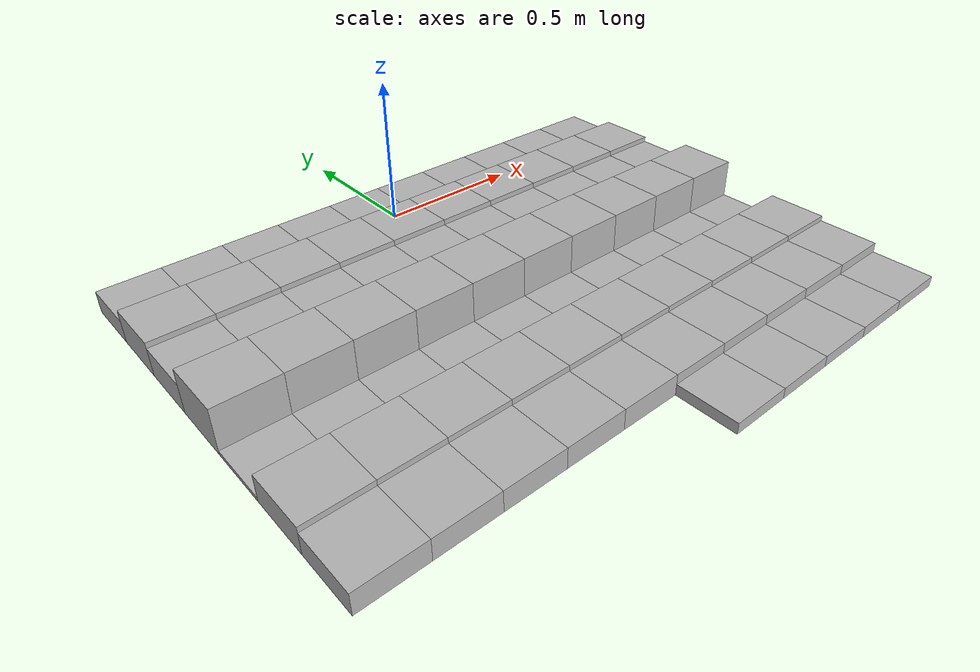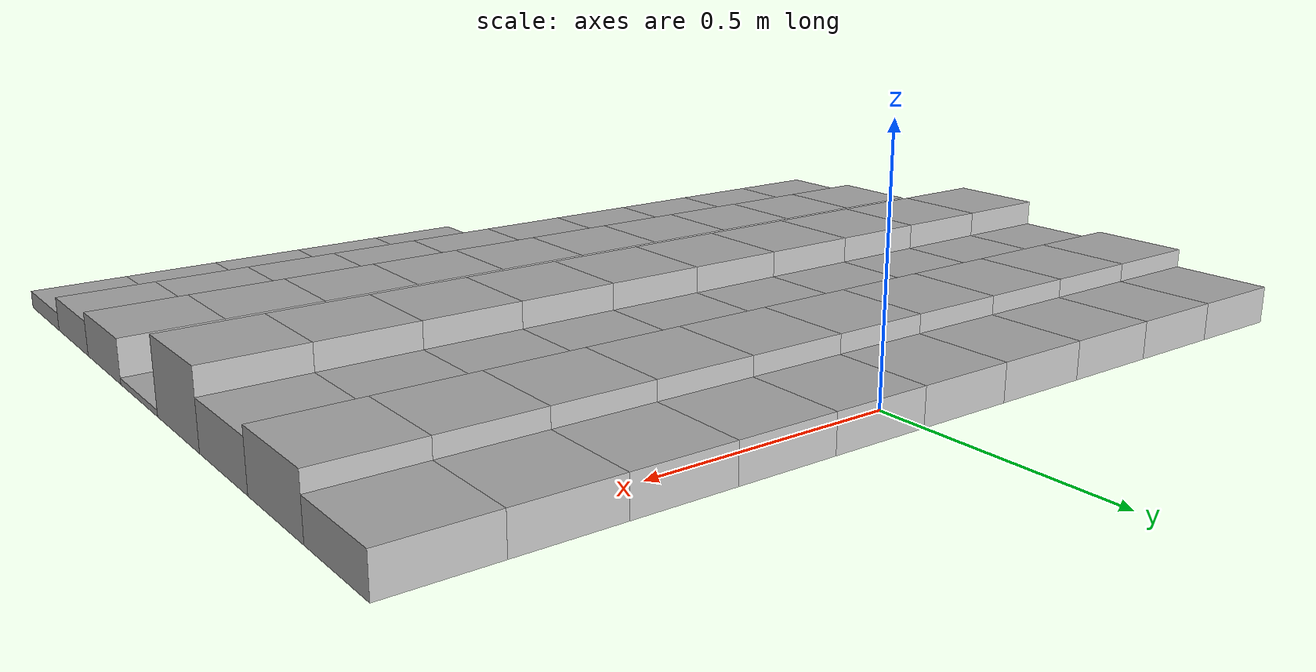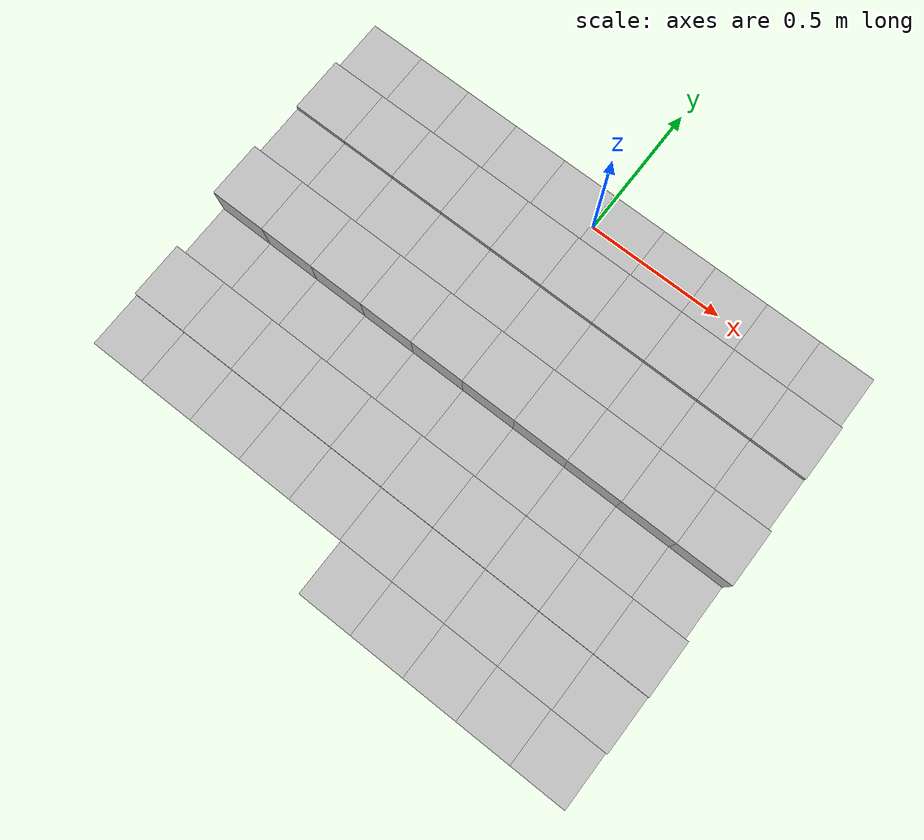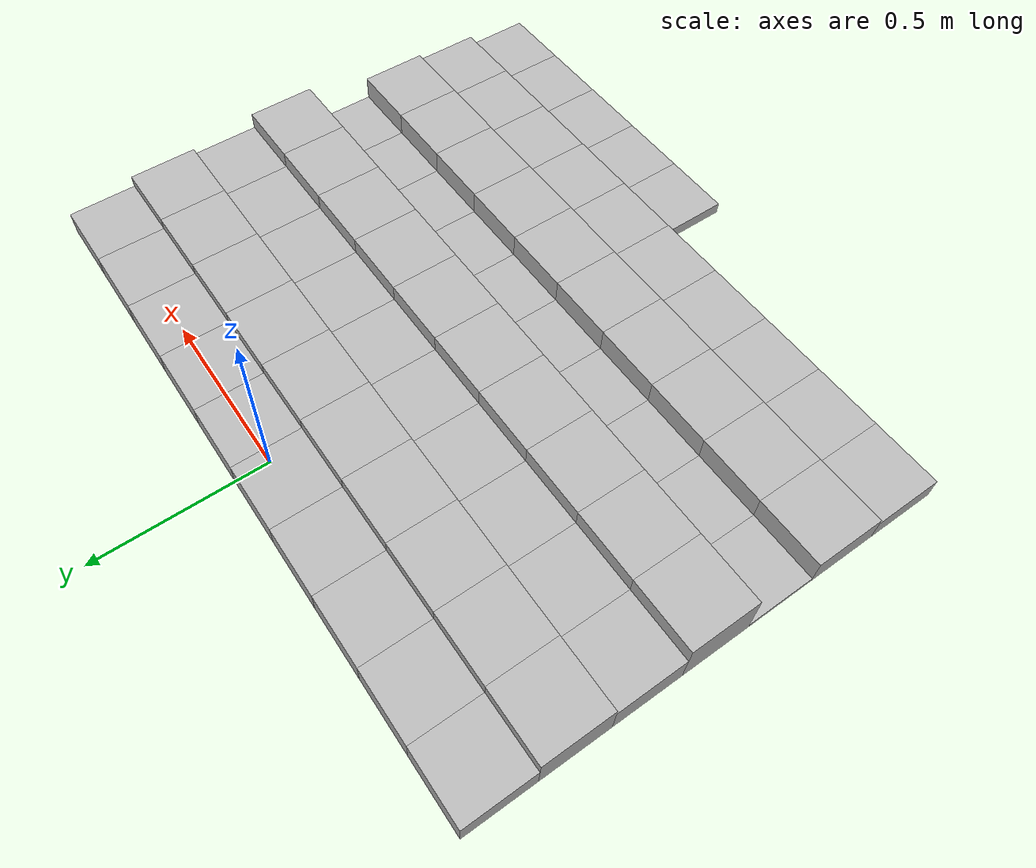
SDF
<sdf version="1.6">
 <model name="Terrain">
  <static>true</static>
  <link name="box_0_0">
   <pose>-0.9 0.0 0.0372517309815 0 0 0</pose>
   <inertial>
    <mass>1.0</mass>
    <inertia><ixx>0.0</ixx><ixy>0.0</ixy><ixz>0.0</ixz><iyy>0.0</iyy><iyz>0.0</iyz><izz>0.0</izz></inertia>
   </inertial>
   <collision name="collision"><geometry><box><size>0.2 0.2 0.0745034619631</size></box></geometry></collision>
   <visual name="visual"><geometry><box><size>0.2 0.2 0.0745034619631</size></box></geometry></visual>
  </link>
  <link name="box_0_1">
   <pose>-0.7 0.0 0.0372517309815 0 0 0</pose>
   <inertial>
    <mass>1.0</mass>
    <inertia><ixx>0.0</ixx><ixy>0.0</ixy><ixz>0.0</ixz><iyy>0.0</iyy><iyz>0.0</iyz><izz>0.0</izz></inertia>
   </inertial>
   <collision name="collision"><geometry><box><size>0.2 0.2 0.0745034619631</size></box></geometry></collision>
   <visual name="visual"><geometry><box><size>0.2 0.2 0.0745034619631</size></box></geometry></visual>
  </link>
  <link name="box_0_2">
   <pose>-0.5 0.0 0.0372517309815 0 0 0</pose>
   <inertial>
    <mass>1.0</mass>
    <inertia><ixx>0.0</ixx><ixy>0.0</ixy><ixz>0.0</ixz><iyy>0.0</iyy><iyz>0.0</iyz><izz>0.0</izz></inertia>
   </inertial>
   <collision name="collision"><geometry><box><size>0.2 0.2 0.0745034619631</size></box></geometry></collision>
   <visual name="visual"><geometry><box><size>0.2 0.2 0.0745034619631</size></box></geometry></visual>
  </link>
  <link name="box_0_3">
   <pose>-0.3 0.0 0.0372517309815 0 0 0</pose>
   <inertial>
    <mass>1.0</mass>
    <inertia><ixx>0.0</ixx><ixy>0.0</ixy><ixz>0.0</ixz><iyy>0.0</iyy><iyz>0.0</iyz><izz>0.0</izz></inertia>
   </inertial>
   <collision name="collision"><geometry><box><size>0.2 0.2 0.0745034619631</size></box></geometry></collision>
   <visual name="visual"><geometry><box><size>0.2 0.2 0.0745034619631</size></box></geometry></visual>
  </link>
  <link name="box_0_4">
   <pose>-0.1 0.0 0.0372517309815 0 0 0</pose>
   <inertial>
    <mass>1.0</mass>
    <inertia><ixx>0.0</ixx><ixy>0.0</ixy><ixz>0.0</ixz><iyy>0.0</iyy><iyz>0.0</iyz><izz>0.0</izz></inertia>
   </inertial>
   <collision name="collision"><geometry><box><size>0.2 0.2 0.0745034619631</size></box></geometry></collision>
   <visual name="visual"><geometry><box><size>0.2 0.2 0.0745034619631</size></box></geometry></visual>
  </link>
  <link name="box_0_5">
   <pose>0.1 0.0 0.0372517309815 0 0 0</pose>
   <inertial>
    <mass>1.0</mass>
    <inertia><ixx>0.0</ixx><ixy>0.0</ixy><ixz>0.0</ixz><iyy>0.0</iyy><iyz>0.0</iyz><izz>0.0</izz></inertia>
   </inertial>
   <collision name="collision"><geometry><box><size>0.2 0.2 0.0745034619631</size></box></geometry></collision>
   <visual name="visual"><geometry><box><size>0.2 0.2 0.0745034619631</size></box></geometry></visual>
  </link>
  <link name="box_0_6">
   <pose>0.3 0.0 0.0372517309815 0 0 0</pose>
   <inertial>
    <mass>1.0</mass>
    <inertia><ixx>0.0</ixx><ixy>0.0</ixy><ixz>0.0</ixz><iyy>0.0</iyy><iyz>0.0</iyz><izz>0.0</izz></inertia>
   </inertial>
   <collision name="collision"><geometry><box><size>0.2 0.2 0.0745034619631</size></box></geometry></collision>
   <visual name="visual"><geometry><box><size>0.2 0.2 0.0745034619631</size></box></geometry></visual>
  </link>
  <link name="box_0_7">
   <pose>0.5 0.0 0.0372517309815 0 0 0</pose>
   <inertial>
    <mass>1.0</mass>
    <inertia><ixx>0.0</ixx><ixy>0.0</ixy><ixz>0.0</ixz><iyy>0.0</iyy><iyz>0.0</iyz><izz>0.0</izz></inertia>
   </inertial>
   <collision name="collision"><geometry><box><size>0.2 0.2 0.0745034619631</size></box></geometry></collision>
   <visual name="visual"><geometry><box><size>0.2 0.2 0.0745034619631</size></box></geometry></visual>
  </link>
  <link name="box_0_8">
   <pose>0.7 0.0 0.0372517309815 0 0 0</pose>
   <inertial>
    <mass>1.0</mass>
    <inertia><ixx>0.0</ixx><ixy>0.0</ixy><ixz>0.0</ixz><iyy>0.0</iyy><iyz>0.0</iyz><izz>0.0</izz></inertia>
   </inertial>
   <collision name="collision"><geometry><box><size>0.2 0.2 0.0745034619631</size></box></geometry></collision>
   <visual name="visual"><geometry><box><size>0.2 0.2 0.0745034619631</size></box></geometry></visual>
  </link>
  <link name="box_0_9">
   <pose>0.9 0.0 0.0372517309815 0 0 0</pose>
   <inertial>
    <mass>1.0</mass>
    <inertia><ixx>0.0</ixx><ixy>0.0</ixy><ixz>0.0</ixz><iyy>0.0</iyy><iyz>0.0</iyz><izz>0.0</izz></inertia>
   </inertial>
   <collision name="collision"><geometry><box><size>0.2 0.2 0.0745034619631</size></box></geometry></collision>
   <visual name="visual"><geometry><box><size>0.2 0.2 0.0745034619631</size></box></geometry></visual>
  </link>
  <link name="box_1_0">
   <pose>-0.9 -0.2 0.0560851930539 0 0 0</pose>
   <inertial>
    <mass>1.0</mass>
    <inertia><ixx>0.0</ixx><ixy>0.0</ixy><ixz>0.0</ixz><iyy>0.0</iyy><iyz>0.0</iyz><izz>0.0</izz></inertia>
   </inertial>
   <collision name="collision"><geometry><box><size>0.2 0.2 0.112170386108</size></box></geometry></collision>
   <visual name="visual"><geometry><box><size>0.2 0.2 0.112170386108</size></box></geometry></visual>
  </link>
  <link name="box_1_1">
   <pose>-0.7 -0.2 0.0560851930539 0 0 0</pose>
   <inertial>
    <mass>1.0</mass>
    <inertia><ixx>0.0</ixx><ixy>0.0</ixy><ixz>0.0</ixz><iyy>0.0</iyy><iyz>0.0</iyz><izz>0.0</izz></inertia>
   </inertial>
   <collision name="collision"><geometry><box><size>0.2 0.2 0.112170386108</size></box></geometry></collision>
   <visual name="visual"><geometry><box><size>0.2 0.2 0.112170386108</size></box></geometry></visual>
  </link>
  <link name="box_1_2">
   <pose>-0.5 -0.2 0.0560851930539 0 0 0</pose>
   <inertial>
    <mass>1.0</mass>
    <inertia><ixx>0.0</ixx><ixy>0.0</ixy><ixz>0.0</ixz><iyy>0.0</iyy><iyz>0.0</iyz><izz>0.0</izz></inertia>
   </inertial>
   <collision name="collision"><geometry><box><size>0.2 0.2 0.112170386108</size></box></geometry></collision>
   <visual name="visual"><geometry><box><size>0.2 0.2 0.112170386108</size></box></geometry></visual>
  </link>
  <link name="box_1_3">
   <pose>-0.3 -0.2 0.0560851930539 0 0 0</pose>
   <inertial>
    <mass>1.0</mass>
    <inertia><ixx>0.0</ixx><ixy>0.0</ixy><ixz>0.0</ixz><iyy>0.0</iyy><iyz>0.0</iyz><izz>0.0</izz></inertia>
   </inertial>
   <collision name="collision"><geometry><box><size>0.2 0.2 0.112170386108</size></box></geometry></collision>
   <visual name="visual"><geometry><box><size>0.2 0.2 0.112170386108</size></box></geometry></visual>
  </link>
  <link name="box_1_4">
   <pose>-0.1 -0.2 0.0560851930539 0 0 0</pose>
   <inertial>
    <mass>1.0</mass>
    <inertia><ixx>0.0</ixx><ixy>0.0</ixy><ixz>0.0</ixz><iyy>0.0</iyy><iyz>0.0</iyz><izz>0.0</izz></inertia>
   </inertial>
   <collision name="collision"><geometry><box><size>0.2 0.2 0.112170386108</size></box></geometry></collision>
   <visual name="visual"><geometry><box><size>0.2 0.2 0.112170386108</size></box></geometry></visual>
  </link>
  <link name="box_1_5">
   <pose>0.1 -0.2 0.0560851930539 0 0 0</pose>
   <inertial>
    <mass>1.0</mass>
    <inertia><ixx>0.0</ixx><ixy>0.0</ixy><ixz>0.0</ixz><iyy>0.0</iyy><iyz>0.0</iyz><izz>0.0</izz></inertia>
   </inertial>
   <collision name="collision"><geometry><box><size>0.2 0.2 0.112170386108</size></box></geometry></collision>
   <visual name="visual"><geometry><box><size>0.2 0.2 0.112170386108</size></box></geometry></visual>
  </link>
  <link name="box_1_6">
   <pose>0.3 -0.2 0.0560851930539 0 0 0</pose>
   <inertial>
    <mass>1.0</mass>
    <inertia><ixx>0.0</ixx><ixy>0.0</ixy><ixz>0.0</ixz><iyy>0.0</iyy><iyz>0.0</iyz><izz>0.0</izz></inertia>
   </inertial>
   <collision name="collision"><geometry><box><size>0.2 0.2 0.112170386108</size></box></geometry></collision>
   <visual name="visual"><geometry><box><size>0.2 0.2 0.112170386108</size></box></geometry></visual>
  </link>
  <link name="box_1_7">
   <pose>0.5 -0.2 0.0560851930539 0 0 0</pose>
   <inertial>
    <mass>1.0</mass>
    <inertia><ixx>0.0</ixx><ixy>0.0</ixy><ixz>0.0</ixz><iyy>0.0</iyy><iyz>0.0</iyz><izz>0.0</izz></inertia>
   </inertial>
   <collision name="collision"><geometry><box><size>0.2 0.2 0.112170386108</size></box></geometry></collision>
   <visual name="visual"><geometry><box><size>0.2 0.2 0.112170386108</size></box></geometry></visual>
  </link>
  <link name="box_1_8">
   <pose>0.7 -0.2 0.0560851930539 0 0 0</pose>
   <inertial>
    <mass>1.0</mass>
    <inertia><ixx>0.0</ixx><ixy>0.0</ixy><ixz>0.0</ixz><iyy>0.0</iyy><iyz>0.0</iyz><izz>0.0</izz></inertia>
   </inertial>
   <collision name="collision"><geometry><box><size>0.2 0.2 0.112170386108</size></box></geometry></collision>
   <visual name="visual"><geometry><box><size>0.2 0.2 0.112170386108</size></box></geometry></visual>
  </link>
  <link name="box_1_9">
   <pose>0.9 -0.2 0.0560851930539 0 0 0</pose>
   <inertial>
    <mass>1.0</mass>
    <inertia><ixx>0.0</ixx><ixy>0.0</ixy><ixz>0.0</ixz><iyy>0.0</iyy><iyz>0.0</iyz><izz>0.0</izz></inertia>
   </inertial>
   <collision name="collision"><geometry><box><size>0.2 0.2 0.112170386108</size></box></geometry></collision>
   <visual name="visual"><geometry><box><size>0.2 0.2 0.112170386108</size></box></geometry></visual>
  </link>
  <link name="box_2_0">
   <pose>-0.9 -0.4 0.0468697539348 0 0 0</pose>
   <inertial>
    <mass>1.0</mass>
    <inertia><ixx>0.0</ixx><ixy>0.0</ixy><ixz>0.0</ixz><iyy>0.0</iyy><iyz>0.0</iyz><izz>0.0</izz></inertia>
   </inertial>
   <collision name="collision"><geometry><box><size>0.2 0.2 0.0937395078696</size></box></geometry></collision>
   <visual name="visual"><geometry><box><size>0.2 0.2 0.0937395078696</size></box></geometry></visual>
  </link>
  <link name="box_2_1">
   <pose>-0.7 -0.4 0.0468697539348 0 0 0</pose>
   <inertial>
    <mass>1.0</mass>
    <inertia><ixx>0.0</ixx><ixy>0.0</ixy><ixz>0.0</ixz><iyy>0.0</iyy><iyz>0.0</iyz><izz>0.0</izz></inertia>
   </inertial>
   <collision name="collision"><geometry><box><size>0.2 0.2 0.0937395078696</size></box></geometry></collision>
   <visual name="visual"><geometry><box><size>0.2 0.2 0.0937395078696</size></box></geometry></visual>
  </link>
  <link name="box_2_2">
   <pose>-0.5 -0.4 0.0468697539348 0 0 0</pose>
   <inertial>
    <mass>1.0</mass>
    <inertia><ixx>0.0</ixx><ixy>0.0</ixy><ixz>0.0</ixz><iyy>0.0</iyy><iyz>0.0</iyz><izz>0.0</izz></inertia>
   </inertial>
   <collision name="collision"><geometry><box><size>0.2 0.2 0.0937395078696</size></box></geometry></collision>
   <visual name="visual"><geometry><box><size>0.2 0.2 0.0937395078696</size></box></geometry></visual>
  </link>
  <link name="box_2_3">
   <pose>-0.3 -0.4 0.0468697539348 0 0 0</pose>
   <inertial>
    <mass>1.0</mass>
    <inertia><ixx>0.0</ixx><ixy>0.0</ixy><ixz>0.0</ixz><iyy>0.0</iyy><iyz>0.0</iyz><izz>0.0</izz></inertia>
   </inertial>
   <collision name="collision"><geometry><box><size>0.2 0.2 0.0937395078696</size></box></geometry></collision>
   <visual name="visual"><geometry><box><size>0.2 0.2 0.0937395078696</size></box></geometry></visual>
  </link>
  <link name="box_2_4">
   <pose>-0.1 -0.4 0.0468697539348 0 0 0</pose>
   <inertial>
    <mass>1.0</mass>
    <inertia><ixx>0.0</ixx><ixy>0.0</ixy><ixz>0.0</ixz><iyy>0.0</iyy><iyz>0.0</iyz><izz>0.0</izz></inertia>
   </inertial>
   <collision name="collision"><geometry><box><size>0.2 0.2 0.0937395078696</size></box></geometry></collision>
   <visual name="visual"><geometry><box><size>0.2 0.2 0.0937395078696</size></box></geometry></visual>
  </link>
  <link name="box_2_5">
   <pose>0.1 -0.4 0.0468697539348 0 0 0</pose>
   <inertial>
    <mass>1.0</mass>
    <inertia><ixx>0.0</ixx><ixy>0.0</ixy><ixz>0.0</ixz><iyy>0.0</iyy><iyz>0.0</iyz><izz>0.0</izz></inertia>
   </inertial>
   <collision name="collision"><geometry><box><size>0.2 0.2 0.0937395078696</size></box></geometry></collision>
   <visual name="visual"><geometry><box><size>0.2 0.2 0.0937395078696</size></box></geometry></visual>
  </link>
  <link name="box_2_6">
   <pose>0.3 -0.4 0.0468697539348 0 0 0</pose>
   <inertial>
    <mass>1.0</mass>
    <inertia><ixx>0.0</ixx><ixy>0.0</ixy><ixz>0.0</ixz><iyy>0.0</iyy><iyz>0.0</iyz><izz>0.0</izz></inertia>
   </inertial>
   <collision name="collision"><geometry><box><size>0.2 0.2 0.0937395078696</size></box></geometry></collision>
   <visual name="visual"><geometry><box><size>0.2 0.2 0.0937395078696</size></box></geometry></visual>
  </link>
  <link name="box_2_7">
   <pose>0.5 -0.4 0.0468697539348 0 0 0</pose>
   <inertial>
    <mass>1.0</mass>
    <inertia><ixx>0.0</ixx><ixy>0.0</ixy><ixz>0.0</ixz><iyy>0.0</iyy><iyz>0.0</iyz><izz>0.0</izz></inertia>
   </inertial>
   <collision name="collision"><geometry><box><size>0.2 0.2 0.0937395078696</size></box></geometry></collision>
   <visual name="visual"><geometry><box><size>0.2 0.2 0.0937395078696</size></box></geometry></visual>
  </link>
  <link name="box_2_8">
   <pose>0.7 -0.4 0.0468697539348 0 0 0</pose>
   <inertial>
    <mass>1.0</mass>
    <inertia><ixx>0.0</ixx><ixy>0.0</ixy><ixz>0.0</ixz><iyy>0.0</iyy><iyz>0.0</iyz><izz>0.0</izz></inertia>
   </inertial>
   <collision name="collision"><geometry><box><size>0.2 0.2 0.0937395078696</size></box></geometry></collision>
   <visual name="visual"><geometry><box><size>0.2 0.2 0.0937395078696</size></box></geometry></visual>
  </link>
  <link name="box_2_9">
   <pose>0.9 -0.4 0.0468697539348 0 0 0</pose>
   <inertial>
    <mass>1.0</mass>
    <inertia><ixx>0.0</ixx><ixy>0.0</ixy><ixz>0.0</ixz><iyy>0.0</iyy><iyz>0.0</iyz><izz>0.0</izz></inertia>
   </inertial>
   <collision name="collision"><geometry><box><size>0.2 0.2 0.0937395078696</size></box></geometry></collision>
   <visual name="visual"><geometry><box><size>0.2 0.2 0.0937395078696</size></box></geometry></visual>
  </link>
  <link name="box_3_0">
   <pose>-0.9 -0.6 0.0730418467598 0 0 0</pose>
   <inertial>
    <mass>1.0</mass>
    <inertia><ixx>0.0</ixx><ixy>0.0</ixy><ixz>0.0</ixz><iyy>0.0</iyy><iyz>0.0</iyz><izz>0.0</izz></inertia>
   </inertial>
   <collision name="collision"><geometry><box><size>0.2 0.2 0.14608369352</size></box></geometry></collision>
   <visual name="visual"><geometry><box><size>0.2 0.2 0.14608369352</size></box></geometry></visual>
  </link>
  <link name="box_3_1">
   <pose>-0.7 -0.6 0.0730418467598 0 0 0</pose>
   <inertial>
    <mass>1.0</mass>
    <inertia><ixx>0.0</ixx><ixy>0.0</ixy><ixz>0.0</ixz><iyy>0.0</iyy><iyz>0.0</iyz><izz>0.0</izz></inertia>
   </inertial>
   <collision name="collision"><geometry><box><size>0.2 0.2 0.14608369352</size></box></geometry></collision>
   <visual name="visual"><geometry><box><size>0.2 0.2 0.14608369352</size></box></geometry></visual>
  </link>
  <link name="box_3_2">
   <pose>-0.5 -0.6 0.0730418467598 0 0 0</pose>
   <inertial>
    <mass>1.0</mass>
    <inertia><ixx>0.0</ixx><ixy>0.0</ixy><ixz>0.0</ixz><iyy>0.0</iyy><iyz>0.0</iyz><izz>0.0</izz></inertia>
   </inertial>
   <collision name="collision"><geometry><box><size>0.2 0.2 0.14608369352</size></box></geometry></collision>
   <visual name="visual"><geometry><box><size>0.2 0.2 0.14608369352</size></box></geometry></visual>
  </link>
  <link name="box_3_3">
   <pose>-0.3 -0.6 0.0730418467598 0 0 0</pose>
   <inertial>
    <mass>1.0</mass>
    <inertia><ixx>0.0</ixx><ixy>0.0</ixy><ixz>0.0</ixz><iyy>0.0</iyy><iyz>0.0</iyz><izz>0.0</izz></inertia>
   </inertial>
   <collision name="collision"><geometry><box><size>0.2 0.2 0.14608369352</size></box></geometry></collision>
   <visual name="visual"><geometry><box><size>0.2 0.2 0.14608369352</size></box></geometry></visual>
  </link>
  <link name="box_3_4">
   <pose>-0.1 -0.6 0.0730418467598 0 0 0</pose>
   <inertial>
    <mass>1.0</mass>
    <inertia><ixx>0.0</ixx><ixy>0.0</ixy><ixz>0.0</ixz><iyy>0.0</iyy><iyz>0.0</iyz><izz>0.0</izz></inertia>
   </inertial>
   <collision name="collision"><geometry><box><size>0.2 0.2 0.14608369352</size></box></geometry></collision>
   <visual name="visual"><geometry><box><size>0.2 0.2 0.14608369352</size></box></geometry></visual>
  </link>
  <link name="box_3_5">
   <pose>0.1 -0.6 0.0730418467598 0 0 0</pose>
   <inertial>
    <mass>1.0</mass>
    <inertia><ixx>0.0</ixx><ixy>0.0</ixy><ixz>0.0</ixz><iyy>0.0</iyy><iyz>0.0</iyz><izz>0.0</izz></inertia>
   </inertial>
   <collision name="collision"><geometry><box><size>0.2 0.2 0.14608369352</size></box></geometry></collision>
   <visual name="visual"><geometry><box><size>0.2 0.2 0.14608369352</size></box></geometry></visual>
  </link>
  <link name="box_3_6">
   <pose>0.3 -0.6 0.0730418467598 0 0 0</pose>
   <inertial>
    <mass>1.0</mass>
    <inertia><ixx>0.0</ixx><ixy>0.0</ixy><ixz>0.0</ixz><iyy>0.0</iyy><iyz>0.0</iyz><izz>0.0</izz></inertia>
   </inertial>
   <collision name="collision"><geometry><box><size>0.2 0.2 0.14608369352</size></box></geometry></collision>
   <visual name="visual"><geometry><box><size>0.2 0.2 0.14608369352</size></box></geometry></visual>
  </link>
  <link name="box_3_7">
   <pose>0.5 -0.6 0.0730418467598 0 0 0</pose>
   <inertial>
    <mass>1.0</mass>
    <inertia><ixx>0.0</ixx><ixy>0.0</ixy><ixz>0.0</ixz><iyy>0.0</iyy><iyz>0.0</iyz><izz>0.0</izz></inertia>
   </inertial>
   <collision name="collision"><geometry><box><size>0.2 0.2 0.14608369352</size></box></geometry></collision>
   <visual name="visual"><geometry><box><size>0.2 0.2 0.14608369352</size></box></geometry></visual>
  </link>
  <link name="box_3_8">
   <pose>0.7 -0.6 0.0730418467598 0 0 0</pose>
   <inertial>
    <mass>1.0</mass>
    <inertia><ixx>0.0</ixx><ixy>0.0</ixy><ixz>0.0</ixz><iyy>0.0</iyy><iyz>0.0</iyz><izz>0.0</izz></inertia>
   </inertial>
   <collision name="collision"><geometry><box><size>0.2 0.2 0.14608369352</size></box></geometry></collision>
   <visual name="visual"><geometry><box><size>0.2 0.2 0.14608369352</size></box></geometry></visual>
  </link>
  <link name="box_3_9">
   <pose>0.9 -0.6 0.0730418467598 0 0 0</pose>
   <inertial>
    <mass>1.0</mass>
    <inertia><ixx>0.0</ixx><ixy>0.0</ixy><ixz>0.0</ixz><iyy>0.0</iyy><iyz>0.0</iyz><izz>0.0</izz></inertia>
   </inertial>
   <collision name="collision"><geometry><box><size>0.2 0.2 0.14608369352</size></box></geometry></collision>
   <visual name="visual"><geometry><box><size>0.2 0.2 0.14608369352</size></box></geometry></visual>
  </link>
  <link name="box_4_0">
   <pose>-0.9 -0.8 0.00616913929575 0 0 0</pose>
   <inertial>
    <mass>1.0</mass>
    <inertia><ixx>0.0</ixx><ixy>0.0</ixy><ixz>0.0</ixz><iyy>0.0</iyy><iyz>0.0</iyz><izz>0.0</izz></inertia>
   </inertial>
   <collision name="collision"><geometry><box><size>0.2 0.2 0.0123382785915</size></box></geometry></collision>
   <visual name="visual"><geometry><box><size>0.2 0.2 0.0123382785915</size></box></geometry></visual>
  </link>
  <link name="box_4_1">
   <pose>-0.7 -0.8 0.00616913929575 0 0 0</pose>
   <inertial>
    <mass>1.0</mass>
    <inertia><ixx>0.0</ixx><ixy>0.0</ixy><ixz>0.0</ixz><iyy>0.0</iyy><iyz>0.0</iyz><izz>0.0</izz></inertia>
   </inertial>
   <collision name="collision"><geometry><box><size>0.2 0.2 0.0123382785915</size></box></geometry></collision>
   <visual name="visual"><geometry><box><size>0.2 0.2 0.0123382785915</size></box></geometry></visual>
  </link>
  <link name="box_4_2">
   <pose>-0.5 -0.8 0.00616913929575 0 0 0</pose>
   <inertial>
    <mass>1.0</mass>
    <inertia><ixx>0.0</ixx><ixy>0.0</ixy><ixz>0.0</ixz><iyy>0.0</iyy><iyz>0.0</iyz><izz>0.0</izz></inertia>
   </inertial>
   <collision name="collision"><geometry><box><size>0.2 0.2 0.0123382785915</size></box></geometry></collision>
   <visual name="visual"><geometry><box><size>0.2 0.2 0.0123382785915</size></box></geometry></visual>
  </link>
  <link name="box_4_3">
   <pose>-0.3 -0.8 0.00616913929575 0 0 0</pose>
   <inertial>
    <mass>1.0</mass>
    <inertia><ixx>0.0</ixx><ixy>0.0</ixy><ixz>0.0</ixz><iyy>0.0</iyy><iyz>0.0</iyz><izz>0.0</izz></inertia>
   </inertial>
   <collision name="collision"><geometry><box><size>0.2 0.2 0.0123382785915</size></box></geometry></collision>
   <visual name="visual"><geometry><box><size>0.2 0.2 0.0123382785915</size></box></geometry></visual>
  </link>
  <link name="box_4_4">
   <pose>-0.1 -0.8 0.00616913929575 0 0 0</pose>
   <inertial>
    <mass>1.0</mass>
    <inertia><ixx>0.0</ixx><ixy>0.0</ixy><ixz>0.0</ixz><iyy>0.0</iyy><iyz>0.0</iyz><izz>0.0</izz></inertia>
   </inertial>
   <collision name="collision"><geometry><box><size>0.2 0.2 0.0123382785915</size></box></geometry></collision>
   <visual name="visual"><geometry><box><size>0.2 0.2 0.0123382785915</size></box></geometry></visual>
  </link>
  <link name="box_4_5">
   <pose>0.1 -0.8 0.00616913929575 0 0 0</pose>
   <inertial>
    <mass>1.0</mass>
    <inertia><ixx>0.0</ixx><ixy>0.0</ixy><ixz>0.0</ixz><iyy>0.0</iyy><iyz>0.0</iyz><izz>0.0</izz></inertia>
   </inertial>
   <collision name="collision"><geometry><box><size>0.2 0.2 0.0123382785915</size></box></geometry></collision>
   <visual name="visual"><geometry><box><size>0.2 0.2 0.0123382785915</size></box></geometry></visual>
  </link>
  <link name="box_4_6">
   <pose>0.3 -0.8 0.00616913929575 0 0 0</pose>
   <inertial>
    <mass>1.0</mass>
    <inertia><ixx>0.0</ixx><ixy>0.0</ixy><ixz>0.0</ixz><iyy>0.0</iyy><iyz>0.0</iyz><izz>0.0</izz></inertia>
   </inertial>
   <collision name="collision"><geometry><box><size>0.2 0.2 0.0123382785915</size></box></geometry></collision>
   <visual name="visual"><geometry><box><size>0.2 0.2 0.0123382785915</size></box></geometry></visual>
  </link>
  <link name="box_4_7">
   <pose>0.5 -0.8 0.00616913929575 0 0 0</pose>
   <inertial>
    <mass>1.0</mass>
    <inertia><ixx>0.0</ixx><ixy>0.0</ixy><ixz>0.0</ixz><iyy>0.0</iyy><iyz>0.0</iyz><izz>0.0</izz></inertia>
   </inertial>
   <collision name="collision"><geometry><box><size>0.2 0.2 0.0123382785915</size></box></geometry></collision>
   <visual name="visual"><geometry><box><size>0.2 0.2 0.0123382785915</size></box></geometry></visual>
  </link>
  <link name="box_4_8">
   <pose>0.7 -0.8 0.00616913929575 0 0 0</pose>
   <inertial>
    <mass>1.0</mass>
    <inertia><ixx>0.0</ixx><ixy>0.0</ixy><ixz>0.0</ixz><iyy>0.0</iyy><iyz>0.0</iyz><izz>0.0</izz></inertia>
   </inertial>
   <collision name="collision"><geometry><box><size>0.2 0.2 0.0123382785915</size></box></geometry></collision>
   <visual name="visual"><geometry><box><size>0.2 0.2 0.0123382785915</size></box></geometry></visual>
  </link>
  <link name="box_4_9">
   <pose>0.9 -0.8 0.00616913929575 0 0 0</pose>
   <inertial>
    <mass>1.0</mass>
    <inertia><ixx>0.0</ixx><ixy>0.0</ixy><ixz>0.0</ixz><iyy>0.0</iyy><iyz>0.0</iyz><izz>0.0</izz></inertia>
   </inertial>
   <collision name="collision"><geometry><box><size>0.2 0.2 0.0123382785915</size></box></geometry></collision>
   <visual name="visual"><geometry><box><size>0.2 0.2 0.0123382785915</size></box></geometry></visual>
  </link>
  <link name="box_5_0">
   <pose>-0.9 -1.0 0.043389464787 0 0 0</pose>
   <inertial>
    <mass>1.0</mass>
    <inertia><ixx>0.0</ixx><ixy>0.0</ixy><ixz>0.0</ixz><iyy>0.0</iyy><iyz>0.0</iyz><izz>0.0</izz></inertia>
   </inertial>
   <collision name="collision"><geometry><box><size>0.2 0.2 0.0867789295741</size></box></geometry></collision>
   <visual name="visual"><geometry><box><size>0.2 0.2 0.0867789295741</size></box></geometry></visual>
  </link>
  <link name="box_5_1">
   <pose>-0.7 -1.0 0.043389464787 0 0 0</pose>
   <inertial>
    <mass>1.0</mass>
    <inertia><ixx>0.0</ixx><ixy>0.0</ixy><ixz>0.0</ixz><iyy>0.0</iyy><iyz>0.0</iyz><izz>0.0</izz></inertia>
   </inertial>
   <collision name="collision"><geometry><box><size>0.2 0.2 0.0867789295741</size></box></geometry></collision>
   <visual name="visual"><geometry><box><size>0.2 0.2 0.0867789295741</size></box></geometry></visual>
  </link>
  <link name="box_5_2">
   <pose>-0.5 -1.0 0.043389464787 0 0 0</pose>
   <inertial>
    <mass>1.0</mass>
    <inertia><ixx>0.0</ixx><ixy>0.0</ixy><ixz>0.0</ixz><iyy>0.0</iyy><iyz>0.0</iyz><izz>0.0</izz></inertia>
   </inertial>
   <collision name="collision"><geometry><box><size>0.2 0.2 0.0867789295741</size></box></geometry></collision>
   <visual name="visual"><geometry><box><size>0.2 0.2 0.0867789295741</size></box></geometry></visual>
  </link>
  <link name="box_5_3">
   <pose>-0.3 -1.0 0.043389464787 0 0 0</pose>
   <inertial>
    <mass>1.0</mass>
    <inertia><ixx>0.0</ixx><ixy>0.0</ixy><ixz>0.0</ixz><iyy>0.0</iyy><iyz>0.0</iyz><izz>0.0</izz></inertia>
   </inertial>
   <collision name="collision"><geometry><box><size>0.2 0.2 0.0867789295741</size></box></geometry></collision>
   <visual name="visual"><geometry><box><size>0.2 0.2 0.0867789295741</size></box></geometry></visual>
  </link>
  <link name="box_5_4">
   <pose>-0.1 -1.0 0.043389464787 0 0 0</pose>
   <inertial>
    <mass>1.0</mass>
    <inertia><ixx>0.0</ixx><ixy>0.0</ixy><ixz>0.0</ixz><iyy>0.0</iyy><iyz>0.0</iyz><izz>0.0</izz></inertia>
   </inertial>
   <collision name="collision"><geometry><box><size>0.2 0.2 0.0867789295741</size></box></geometry></collision>
   <visual name="visual"><geometry><box><size>0.2 0.2 0.0867789295741</size></box></geometry></visual>
  </link>
  <link name="box_5_5">
   <pose>0.1 -1.0 0.043389464787 0 0 0</pose>
   <inertial>
    <mass>1.0</mass>
    <inertia><ixx>0.0</ixx><ixy>0.0</ixy><ixz>0.0</ixz><iyy>0.0</iyy><iyz>0.0</iyz><izz>0.0</izz></inertia>
   </inertial>
   <collision name="collision"><geometry><box><size>0.2 0.2 0.0867789295741</size></box></geometry></collision>
   <visual name="visual"><geometry><box><size>0.2 0.2 0.0867789295741</size></box></geometry></visual>
  </link>
  <link name="box_5_6">
   <pose>0.3 -1.0 0.043389464787 0 0 0</pose>
   <inertial>
    <mass>1.0</mass>
    <inertia><ixx>0.0</ixx><ixy>0.0</ixy><ixz>0.0</ixz><iyy>0.0</iyy><iyz>0.0</iyz><izz>0.0</izz></inertia>
   </inertial>
   <collision name="collision"><geometry><box><size>0.2 0.2 0.0867789295741</size></box></geometry></collision>
   <visual name="visual"><geometry><box><size>0.2 0.2 0.0867789295741</size></box></geometry></visual>
  </link>
  <link name="box_5_7">
   <pose>0.5 -1.0 0.043389464787 0 0 0</pose>
   <inertial>
    <mass>1.0</mass>
    <inertia><ixx>0.0</ixx><ixy>0.0</ixy><ixz>0.0</ixz><iyy>0.0</iyy><iyz>0.0</iyz><izz>0.0</izz></inertia>
   </inertial>
   <collision name="collision"><geometry><box><size>0.2 0.2 0.0867789295741</size></box></geometry></collision>
   <visual name="visual"><geometry><box><size>0.2 0.2 0.0867789295741</size></box></geometry></visual>
  </link>
  <link name="box_5_8">
   <pose>0.7 -1.0 0.043389464787 0 0 0</pose>
   <inertial>
    <mass>1.0</mass>
    <inertia><ixx>0.0</ixx><ixy>0.0</ixy><ixz>0.0</ixz><iyy>0.0</iyy><iyz>0.0</iyz><izz>0.0</izz></inertia>
   </inertial>
   <collision name="collision"><geometry><box><size>0.2 0.2 0.0867789295741</size></box></geometry></collision>
   <visual name="visual"><geometry><box><size>0.2 0.2 0.0867789295741</size></box></geometry></visual>
  </link>
  <link name="box_5_9">
   <pose>0.9 -1.0 0.043389464787 0 0 0</pose>
   <inertial>
    <mass>1.0</mass>
    <inertia><ixx>0.0</ixx><ixy>0.0</ixy><ixz>0.0</ixz><iyy>0.0</iyy><iyz>0.0</iyz><izz>0.0</izz></inertia>
   </inertial>
   <collision name="collision"><geometry><box><size>0.2 0.2 0.0867789295741</size></box></geometry></collision>
   <visual name="visual"><geometry><box><size>0.2 0.2 0.0867789295741</size></box></geometry></visual>
  </link>
  <link name="box_6_0">
   <pose>-0.9 -1.2 0.0344750159659 0 0 0</pose>
   <inertial>
    <mass>1.0</mass>
    <inertia><ixx>0.0</ixx><ixy>0.0</ixy><ixz>0.0</ixz><iyy>0.0</iyy><iyz>0.0</iyz><izz>0.0</izz></inertia>
   </inertial>
   <collision name="collision"><geometry><box><size>0.2 0.2 0.0689500319317</size></box></geometry></collision>
   <visual name="visual"><geometry><box><size>0.2 0.2 0.0689500319317</size></box></geometry></visual>
  </link>
  <link name="box_6_1">
   <pose>-0.7 -1.2 0.0344750159659 0 0 0</pose>
   <inertial>
    <mass>1.0</mass>
    <inertia><ixx>0.0</ixx><ixy>0.0</ixy><ixz>0.0</ixz><iyy>0.0</iyy><iyz>0.0</iyz><izz>0.0</izz></inertia>
   </inertial>
   <collision name="collision"><geometry><box><size>0.2 0.2 0.0689500319317</size></box></geometry></collision>
   <visual name="visual"><geometry><box><size>0.2 0.2 0.0689500319317</size></box></geometry></visual>
  </link>
  <link name="box_6_2">
   <pose>-0.5 -1.2 0.0344750159659 0 0 0</pose>
   <inertial>
    <mass>1.0</mass>
    <inertia><ixx>0.0</ixx><ixy>0.0</ixy><ixz>0.0</ixz><iyy>0.0</iyy><iyz>0.0</iyz><izz>0.0</izz></inertia>
   </inertial>
   <collision name="collision"><geometry><box><size>0.2 0.2 0.0689500319317</size></box></geometry></collision>
   <visual name="visual"><geometry><box><size>0.2 0.2 0.0689500319317</size></box></geometry></visual>
  </link>
  <link name="box_6_3">
   <pose>-0.3 -1.2 0.0344750159659 0 0 0</pose>
   <inertial>
    <mass>1.0</mass>
    <inertia><ixx>0.0</ixx><ixy>0.0</ixy><ixz>0.0</ixz><iyy>0.0</iyy><iyz>0.0</iyz><izz>0.0</izz></inertia>
   </inertial>
   <collision name="collision"><geometry><box><size>0.2 0.2 0.0689500319317</size></box></geometry></collision>
   <visual name="visual"><geometry><box><size>0.2 0.2 0.0689500319317</size></box></geometry></visual>
  </link>
  <link name="box_6_4">
   <pose>-0.1 -1.2 0.0344750159659 0 0 0</pose>
   <inertial>
    <mass>1.0</mass>
    <inertia><ixx>0.0</ixx><ixy>0.0</ixy><ixz>0.0</ixz><iyy>0.0</iyy><iyz>0.0</iyz><izz>0.0</izz></inertia>
   </inertial>
   <collision name="collision"><geometry><box><size>0.2 0.2 0.0689500319317</size></box></geometry></collision>
   <visual name="visual"><geometry><box><size>0.2 0.2 0.0689500319317</size></box></geometry></visual>
  </link>
  <link name="box_6_5">
   <pose>0.1 -1.2 0.0344750159659 0 0 0</pose>
   <inertial>
    <mass>1.0</mass>
    <inertia><ixx>0.0</ixx><ixy>0.0</ixy><ixz>0.0</ixz><iyy>0.0</iyy><iyz>0.0</iyz><izz>0.0</izz></inertia>
   </inertial>
   <collision name="collision"><geometry><box><size>0.2 0.2 0.0689500319317</size></box></geometry></collision>
   <visual name="visual"><geometry><box><size>0.2 0.2 0.0689500319317</size></box></geometry></visual>
  </link>
  <link name="box_6_6">
   <pose>0.3 -1.2 0.0344750159659 0 0 0</pose>
   <inertial>
    <mass>1.0</mass>
    <inertia><ixx>0.0</ixx><ixy>0.0</ixy><ixz>0.0</ixz><iyy>0.0</iyy><iyz>0.0</iyz><izz>0.0</izz></inertia>
   </inertial>
   <collision name="collision"><geometry><box><size>0.2 0.2 0.0689500319317</size></box></geometry></collision>
   <visual name="visual"><geometry><box><size>0.2 0.2 0.0689500319317</size></box></geometry></visual>
  </link>
  <link name="box_6_7">
   <pose>0.5 -1.2 0.0344750159659 0 0 0</pose>
   <inertial>
    <mass>1.0</mass>
    <inertia><ixx>0.0</ixx><ixy>0.0</ixy><ixz>0.0</ixz><iyy>0.0</iyy><iyz>0.0</iyz><izz>0.0</izz></inertia>
   </inertial>
   <collision name="collision"><geometry><box><size>0.2 0.2 0.0689500319317</size></box></geometry></collision>
   <visual name="visual"><geometry><box><size>0.2 0.2 0.0689500319317</size></box></geometry></visual>
  </link>
  <link name="box_6_8">
   <pose>0.7 -1.2 0.0344750159659 0 0 0</pose>
   <inertial>
    <mass>1.0</mass>
    <inertia><ixx>0.0</ixx><ixy>0.0</ixy><ixz>0.0</ixz><iyy>0.0</iyy><iyz>0.0</iyz><izz>0.0</izz></inertia>
   </inertial>
   <collision name="collision"><geometry><box><size>0.2 0.2 0.0689500319317</size></box></geometry></collision>
   <visual name="visual"><geometry><box><size>0.2 0.2 0.0689500319317</size></box></geometry></visual>
  </link>
  <link name="box_6_9">
   <pose>0.9 -1.2 0.0344750159659 0 0 0</pose>
   <inertial>
    <mass>1.0</mass>
    <inertia><ixx>0.0</ixx><ixy>0.0</ixy><ixz>0.0</ixz><iyy>0.0</iyy><iyz>0.0</iyz><izz>0.0</izz></inertia>
   </inertial>
   <collision name="collision"><geometry><box><size>0.2 0.2 0.0689500319317</size></box></geometry></collision>
   <visual name="visual"><geometry><box><size>0.2 0.2 0.0689500319317</size></box></geometry></visual>
  </link>
  <link name="box_7_5">
   <pose>0.1 -1.4 0.0180573859892 0 0 0</pose>
   <inertial>
    <mass>1.0</mass>
    <inertia><ixx>0.0</ixx><ixy>0.0</ixy><ixz>0.0</ixz><iyy>0.0</iyy><iyz>0.0</iyz><izz>0.0</izz></inertia>
   </inertial>
   <collision name="collision"><geometry><box><size>0.2 0.2 0.0361147719784</size></box></geometry></collision>
   <visual name="visual"><geometry><box><size>0.2 0.2 0.0361147719784</size></box></geometry></visual>
  </link>
  <link name="box_7_6">
   <pose>0.3 -1.4 0.0180573859892 0 0 0</pose>
   <inertial>
    <mass>1.0</mass>
    <inertia><ixx>0.0</ixx><ixy>0.0</ixy><ixz>0.0</ixz><iyy>0.0</iyy><iyz>0.0</iyz><izz>0.0</izz></inertia>
   </inertial>
   <collision name="collision"><geometry><box><size>0.2 0.2 0.0361147719784</size></box></geometry></collision>
   <visual name="visual"><geometry><box><size>0.2 0.2 0.0361147719784</size></box></geometry></visual>
  </link>
  <link name="box_7_7">
   <pose>0.5 -1.4 0.0180573859892 0 0 0</pose>
   <inertial>
    <mass>1.0</mass>
    <inertia><ixx>0.0</ixx><ixy>0.0</ixy><ixz>0.0</ixz><iyy>0.0</iyy><iyz>0.0</iyz><izz>0.0</izz></inertia>
   </inertial>
   <collision name="collision"><geometry><box><size>0.2 0.2 0.0361147719784</size></box></geometry></collision>
   <visual name="visual"><geometry><box><size>0.2 0.2 0.0361147719784</size></box></geometry></visual>
  </link>
  <link name="box_7_8">
   <pose>0.7 -1.4 0.0180573859892 0 0 0</pose>
   <inertial>
    <mass>1.0</mass>
    <inertia><ixx>0.0</ixx><ixy>0.0</ixy><ixz>0.0</ixz><iyy>0.0</iyy><iyz>0.0</iyz><izz>0.0</izz></inertia>
   </inertial>
   <collision name="collision"><geometry><box><size>0.2 0.2 0.0361147719784</size></box></geometry></collision>
   <visual name="visual"><geometry><box><size>0.2 0.2 0.0361147719784</size></box></geometry></visual>
  </link>
  <link name="box_7_9">
   <pose>0.9 -1.4 0.0180573859892 0 0 0</pose>
   <inertial>
    <mass>1.0</mass>
    <inertia><ixx>0.0</ixx><ixy>0.0</ixy><ixz>0.0</ixz><iyy>0.0</iyy><iyz>0.0</iyz><izz>0.0</izz></inertia>
   </inertial>
   <collision name="collision"><geometry><box><size>0.2 0.2 0.0361147719784</size></box></geometry></collision>
   <visual name="visual"><geometry><box><size>0.2 0.2 0.0361147719784</size></box></geometry></visual>
  </link>
 </model>
</sdf>
